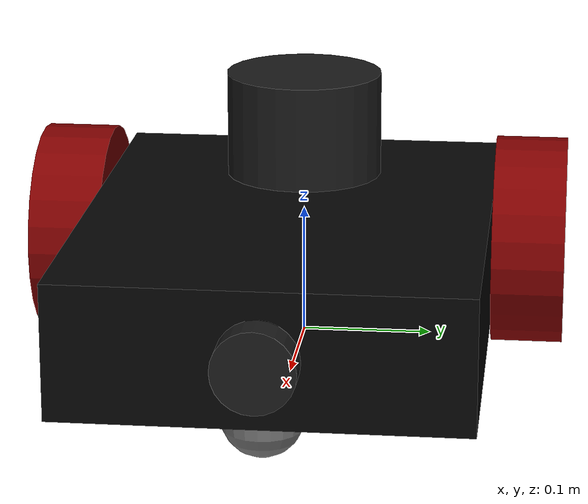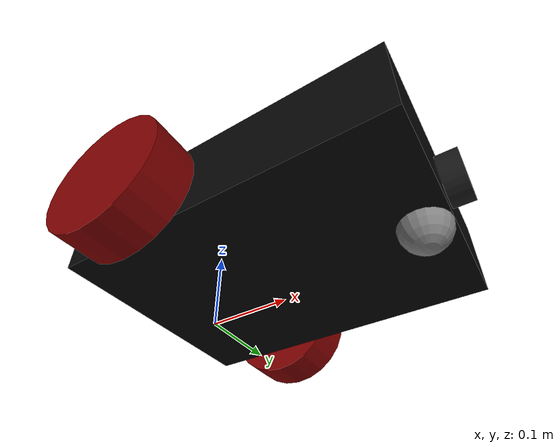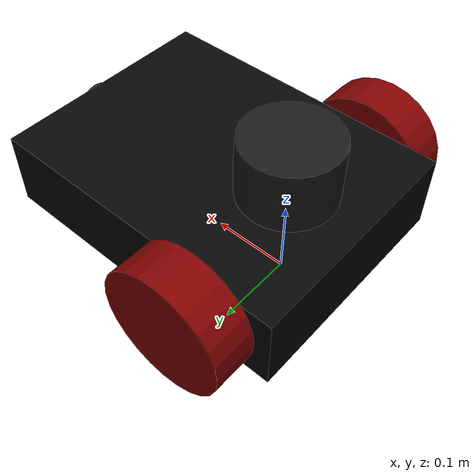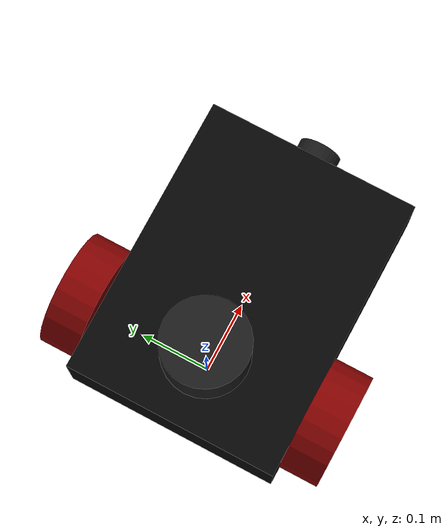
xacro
<?xml version="1.0"?>
<robot name="robot_arm" xmlns:xacro="http://www.ros.org/wiki/xacro">

  <!-- ARQUIVO PRINCIPAL                            -->
  <!-- Importa propriedades e macros, define o robô -->

  <!-- IMPORTAÇÃO DE ARQUIVOS -->
  <!--
    xacro:include importa o conteúdo de outros arquivos .xacro
    $(find package_name) retorna o caminho do pacote ROS
  -->
  <xacro:include filename="$(find rm_description)/urdf/properties.xacro"/>
  <xacro:include filename="$(find rm_description)/urdf/wheels.xacro"/>
  <xacro:include filename="$(find rm_description)/urdf/gazebo_control.xacro" />
  <xacro:include filename="$(find rm_description)/urdf/sensors.xacro" />

  <!-- BASE FOOTPRINT       -->
  <link name="base_footprint"/>

  <!-- BASE LINK (CHASSIS)   -->
  <link name="base_link">
    <visual>
      <origin xyz="${offset} 0 0" rpy="0 0 0"/>
      <geometry>
        <box size="${chassis_length} ${chassis_width} ${chassis_height}"/>
      </geometry>
      <material name="dark_gray"/>
    </visual>
    <collision>
      <origin xyz="${offset} 0 0" rpy="0 0 0"/>
      <geometry>
        <box size="${chassis_length} ${chassis_width} ${chassis_height}"/>
      </geometry>
    </collision>
    <inertial>
      <origin xyz="${offset} 0 0" rpy="0 0 0"/>
      <mass value="${chassis_mass}"/>
      <inertia
        ixx="${(1/12) * chassis_mass * (chassis_width*chassis_width + chassis_height*chassis_height)}"
        ixy="0.0" ixz="0.0"
        iyy="${(1/12) * chassis_mass * (chassis_length*chassis_length + chassis_height*chassis_height)}"
        iyz="0.0"
        izz="${(1/12) * chassis_mass * (chassis_length*chassis_length + chassis_width*chassis_width)}"/>
    </inertial>
  </link>

  <joint name="base_joint" type="fixed">
    <parent link="base_footprint"/>
    <child link="base_link"/>
    <origin xyz="0 0 ${wheel_radius}" rpy="0 0 0"/>
  </joint>

  <!-- RIGHT WHEEL      -->
  <!-- Usa cylinder_link com Y+ para posicionar o cilindro na direção positiva do eixo Y -->
  <xacro:cylinder_link
    name="right_wheel"
    length="${wheel_length}"
    radius="${wheel_radius}"
    mass="${wheel_mass}"
    material="red"/>

  <joint name="right_wheel_joint" type="continuous">
    <parent link="base_link"/>
    <child link="right_wheel"/>
    <origin xyz="0 ${-chassis_width/2 - wheel_length/2} 0" rpy="0 0 0"/>
    <axis xyz="0 1 0"/>
  </joint>

  <!-- LEFT WHEEL      -->
  <!-- Usa cylinder_link com Y- para posicionar o cilindro na direção negativa do eixo Y -->
  <xacro:cylinder_link
    name="left_wheel"
    length="${wheel_length}"
    radius="${wheel_radius}"
    mass="${wheel_mass}"
    material="red"/>

  <joint name="left_wheel_joint" type="continuous">
    <parent link="base_link"/>
    <child link="left_wheel"/>
    <origin xyz="0 ${chassis_width/2 + wheel_length/2} 0" rpy="0 0 0"/>
    <axis xyz="0 1 0"/>
  </joint>

  <!-- CASTER BALL          -->
  <!-- Esfera para estabilidade frontal/traseira, tocando o chão no mesmo nível das rodas -->
  <xacro:sphere_link
    name="caster_ball"
    radius="${cw_radius}"
    mass="${cw_mass}"
    material="silver"/>

  <joint name="caster_joint" type="fixed">
    <parent link="base_link"/>
    <child link="caster_ball"/>
    <origin xyz="${chassis_length/2 - cw_radius + offset} 0 ${-(chassis_height/2)}" rpy="0 0 0"/>
  </joint>

  <!-- CÂMERA               -->

  <link name="camera">
    <visual>
      <!-- Desloca para que a BASE do cilindro fique na origem -->
      <origin xyz="${-camera_length/2} 0 0" rpy="0 1.57079 0"/>
      <geometry>
        <cylinder radius="${camera_radius}" length="${camera_length}"/>
      </geometry>
      <material name="gray"/>
    </visual>

    <collision>
      <origin xyz="${-camera_length/2} 0 0" rpy="0 1.57079 0"/>
      <geometry>
        <cylinder radius="${camera_radius}" length="${camera_length}"/>
      </geometry>
    </collision>

    <inertial>
      <origin xyz="${-camera_length/2} 0 0" rpy="0 1.57079 0"/>
      <mass value="${camera_mass}"/>
      <!-- Fórmula de inércia para cilindro sólido -->
      <inertia
        ixx="${(1/12) * camera_mass * (3*camera_radius*camera_radius + camera_length*camera_length)}"
        ixy="0.0" ixz="0.0"
        iyy="${(1/12) * camera_mass * (3*camera_radius*camera_radius + camera_length*camera_length)}"
        iyz="0.0"
        izz="${(1/2) * camera_mass * camera_radius * camera_radius}"/>
    </inertial>
  </link>

  <joint name="camera_joint" type="fixed">
  <parent link="base_link"/>
  <child link="camera"/>
  <origin xyz="${chassis_length/2 + offset + camera_length/2} 0 0" rpy="0 0 0"/>
  </joint>

  <!-- LIDAR               -->

  <link name="lidar">
    <visual>
      <!-- Desloca para que a BASE do cilindro fique na origem -->
      <origin xyz="0 0 0" rpy="0 0 0"/>
      <geometry>
        <cylinder radius="${lidar_radius}" length="${lidar_length}"/>
      </geometry>
      <material name="gray"/>
    </visual>

    <collision>
      <origin xyz="0 0 0" rpy="0 0 0"/>
      <geometry>
        <cylinder radius="${lidar_radius}" length="${lidar_length}"/>
      </geometry>
    </collision>

    <inertial>
      <origin xyz="0 0 0" rpy="0 0 0"/>
      <mass value="${lidar_mass}"/>
      <!-- Fórmula de inércia para cilindro sólido -->
      <inertia
        ixx="${(1/12) * lidar_mass * (3*lidar_radius*lidar_radius + lidar_length*lidar_length)}"
        ixy="0.0" ixz="0.0"
        iyy="${(1/12) * lidar_mass * (3*lidar_radius*lidar_radius + lidar_length*lidar_length)}"
        iyz="0.0"
        izz="${(1/2) * lidar_mass * lidar_radius * lidar_radius}"/>
    </inertial>
  </link>

  <joint name="lidar_joint" type="fixed">
  <parent link="base_link"/>
  <child link="lidar"/>
  <origin xyz="0 0 ${chassis_height/2 + lidar_length/2}" rpy="0 0 0"/>
  </joint>

  <!-- IMU                  -->

  <link name="imu">
  </link>

  <joint name="imu_joint" type="fixed">
  <parent link="base_link"/>
  <child link="imu"/>
  <origin xyz="0 0 0" rpy="0 0 0"/>
  </joint>

</robot>

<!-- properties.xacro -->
<robot xmlns:xacro="http://www.ros.org/wiki/xacro">

  <!-- ARQUIVO DE PROPRIEDADES                      -->
  <!-- Contém todas as constantes e dimensões       -->

  <!-- Propriedades do Chassis -->
  <xacro:property name="chassis_length" value="0.4"/>
  <xacro:property name="chassis_width" value="0.3"/>
  <xacro:property name="chassis_height" value="0.1"/>
  <xacro:property name="chassis_mass" value="2.0"/>

  <!-- Propriedades das Rodas -->
  <xacro:property name="wheel_length" value="0.055"/>
  <xacro:property name="wheel_radius" value="0.08"/>
  <xacro:property name="wheel_mass" value="1.0"/>

  <!-- Offset Rodas-->
  <xacro:property name="offset" value="0.1"/>

  <!-- Propriedades da Caster Wheel -->
  <xacro:property name="cw_radius" value="0.03"/>
  <xacro:property name="cw_mass" value="0.1"/>

  <!-- Propriedades da Camera -->
  <xacro:property name="camera_length" value="0.05"/>
  <xacro:property name="camera_radius" value="0.03"/>
  <xacro:property name="camera_mass" value="0.05"/>

  <!-- Propriedades do lidar -->
  <xacro:property name="lidar_length" value="0.08"/>
  <xacro:property name="lidar_radius" value="0.06"/>
  <xacro:property name="lidar_mass" value="0.1"/>

  <!-- MATERIAIS (cores)                            -->
  <material name="silver">
    <color rgba="0.5 0.5 0.5 1"/>
  </material>

  <material name="gray">
    <color rgba="0.1 0.1 0.1 1"/>
  </material>

  <material name="dark_gray">
    <color rgba="0.02 0.02 0.02 1"/>
  </material>

  <material name="red">
    <color rgba="0.5 0 0 1"/>
  </material>

  <material name="blue">
    <color rgba="0 0 0.5 1"/>
  </material>

</robot>

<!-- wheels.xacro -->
<robot xmlns:xacro="http://www.ros.org/wiki/xacro">

  <!-- ARQUIVO DE MACROS                            -->
  <!-- Contém componentes reutilizáveis             -->

  <!-- MACRO: LINK CILÍNDRICO  -->
  <xacro:macro name="cylinder_link" params="name length radius mass material">
    <link name="${name}">
      <visual>
        <!-- Desloca para que a BASE do cilindro fique na origem -->
        <origin xyz="0 0 0" rpy="1.5708 0 0"/>
        <geometry>
          <cylinder radius="${radius}" length="${length}"/>
        </geometry>
        <material name="${material}"/>
      </visual>

      <collision>
        <origin xyz="0 0 0" rpy="1.5708 0 0"/>
        <geometry>
          <cylinder radius="${radius}" length="${length}"/>
        </geometry>
      </collision>

      <inertial>
        <origin xyz="0 0 0" rpy="1.5708 0 0"/>
        <mass value="${mass}"/>
        <!-- Fórmula de inércia para cilindro sólido -->
        <inertia
          ixx="${(1/12) * mass * (3*radius*radius + length*length)}"
          ixy="0.0" ixz="0.0"
          iyy="${(1/12) * mass * (3*radius*radius + length*length)}"
          iyz="0.0"
          izz="${(1/2) * mass * radius * radius}"/>
      </inertial>
    </link>
  </xacro:macro>

  <!-- MACRO: LINK ESFÉRICO -->
  <xacro:macro name="sphere_link" params="name radius mass material">
    <link name="${name}">
      <visual>
        <origin xyz="0 0 0" rpy="0 0 0"/>
        <geometry>
          <sphere radius="${radius}"/>
        </geometry>
        <material name="${material}"/>
      </visual>

      <collision>
        <origin xyz="0 0 0" rpy="0 0 0"/>
        <geometry>
          <sphere radius="${radius}"/>
        </geometry>
      </collision>

      <inertial>
        <origin xyz="0 0 0" rpy="0 0 0"/>
        <mass value="${mass}"/>
        <!-- Fórmula de inércia para esfera sólida -->
        <inertia
          ixx="${(2/5) * mass * radius * radius}"
          ixy="0.0" ixz="0.0"
          iyy="${(2/5) * mass * radius * radius}"
          iyz="0.0"
          izz="${(2/5) * mass * radius * radius}"/>
      </inertial>
    </link>
  </xacro:macro>

</robot>
